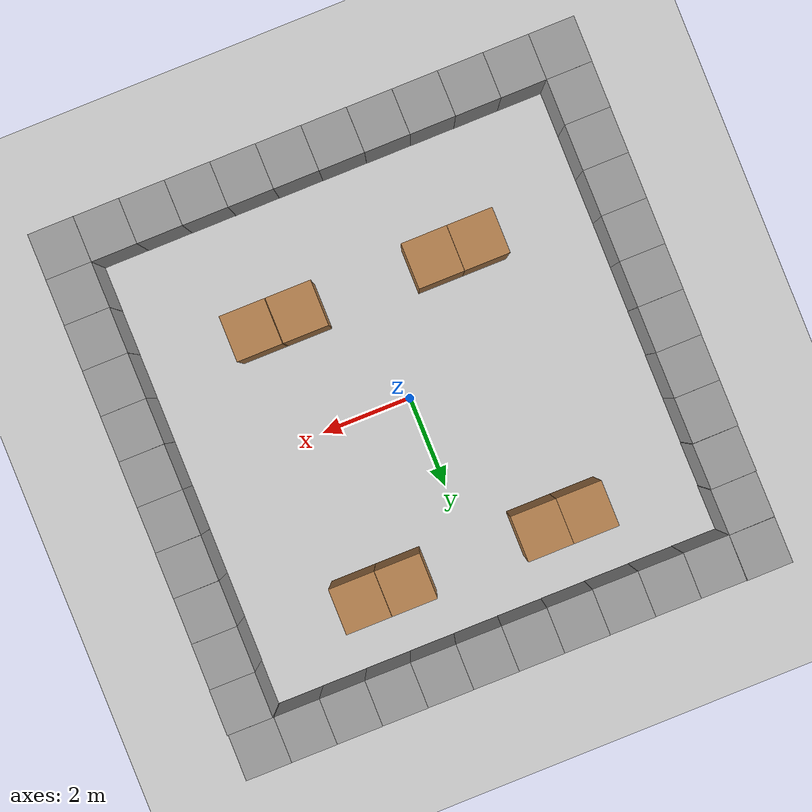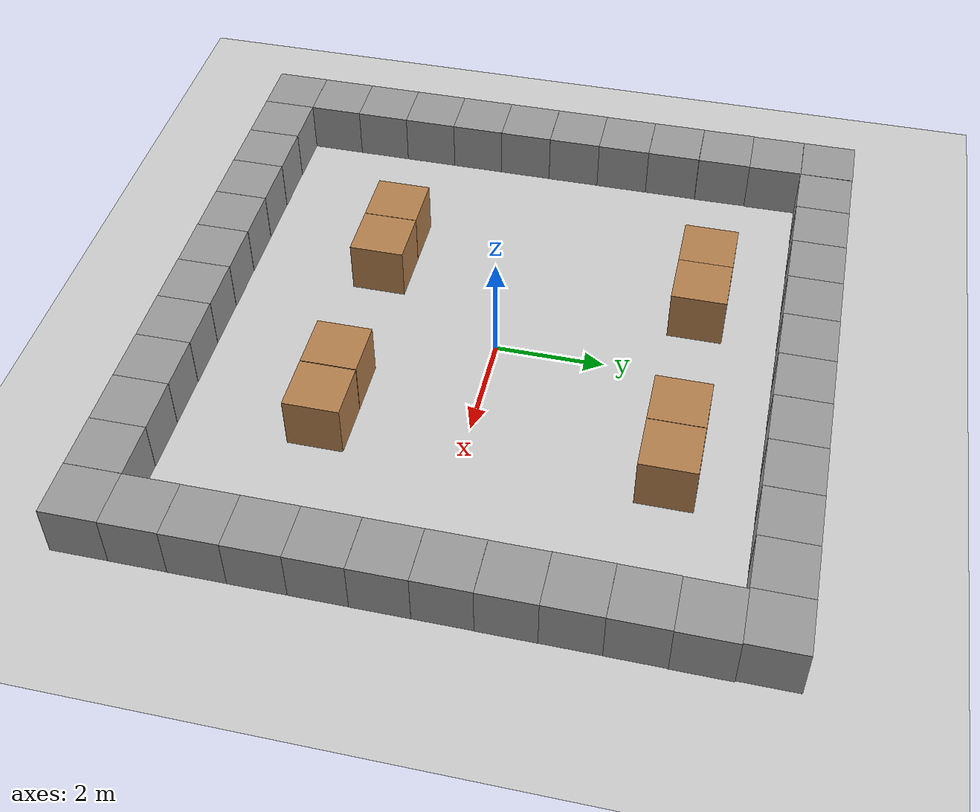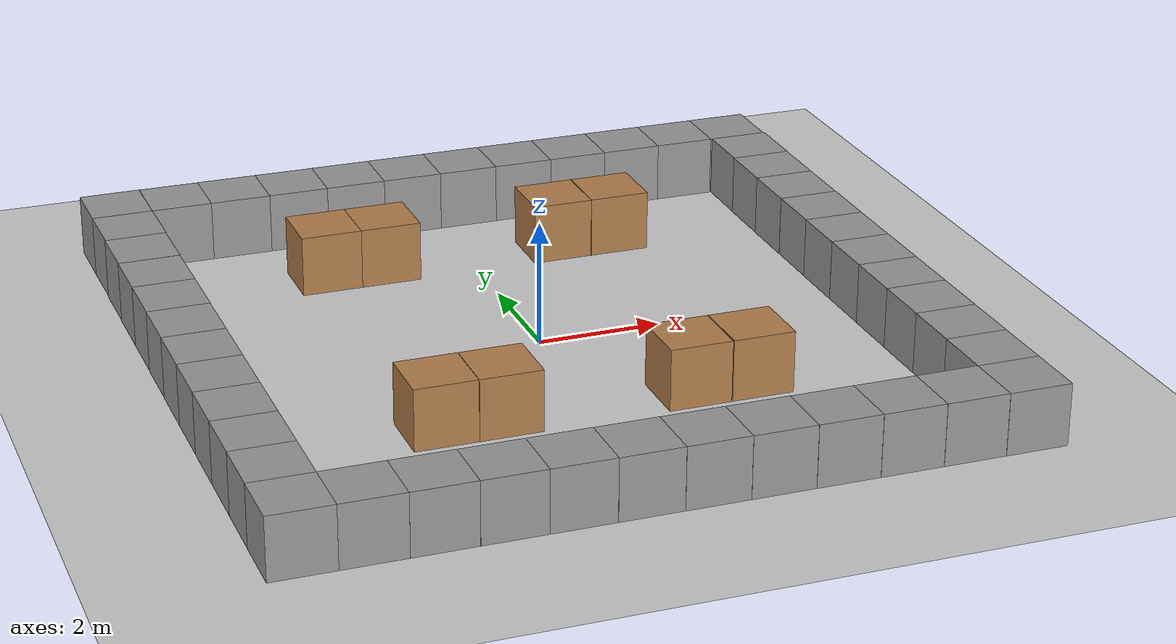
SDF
<sdf version="1.6">
 <world name="default">
  <light name="sun" type="directional">
   <pose>0 0 10 0 -0 0</pose>
   <diffuse>0.8 0.8 0.8 1</diffuse>
   <specular>0.1 0.1 0.1 1</specular>
   <attenuation>
    <range>1000</range>
    <constant>0.9</constant>
    <linear>0.01</linear>
    <quadratic>0.001</quadratic>
   </attenuation>
   <direction>-0.5 0.5 -1</direction>
  </light>
  <model name="ground_plane">
   <static>1</static>
   <link name="link">
    <collision name="collision">
     <geometry><plane><normal>0 0 1</normal><size>100 100</size></plane></geometry>
     <surface><friction><ode><mu>100</mu><mu2>50</mu2></ode></friction></surface>
    </collision>
    <visual name="visual">
     <cast_shadows>0</cast_shadows>
     <geometry><plane><normal>0 0 1</normal><size>100 100</size></plane></geometry>
     <material>
      <script><uri>file://media/materials/scripts/gazebo.material</uri><name>Gazebo/Grey</name></script>
     </material>
    </visual>
   </link>
  </model>
  <gravity>0 0 -9.8</gravity>
  <magnetic_field>6e-06 2.3e-05 -4.2e-05</magnetic_field>
  <atmosphere type="adiabatic"/>
  <physics name="default_physics" default="0" type="ode">
   <max_step_size>0.001</max_step_size>
   <real_time_factor>1</real_time_factor>
   <real_time_update_rate>1000</real_time_update_rate>
  </physics>
  <scene><ambient>0.4 0.4 0.4 1</ambient><background>0.7 0.7 0.7 1</background><shadows>1</shadows></scene>
  <spherical_coordinates>
   <surface_model>EARTH_WGS84</surface_model>
   <latitude_deg>0</latitude_deg>
   <longitude_deg>0</longitude_deg>
   <elevation>0</elevation>
   <heading_deg>0</heading_deg>
  </spherical_coordinates>
  <model name="unit_box_8">
   <pose>-2.50434 -2.50006 0.5 0 -0 0.000101</pose>
   <link name="link">
    <inertial>
     <mass>1</mass>
     <inertia>
      <ixx>0.166667</ixx>
      <ixy>0</ixy>
      <ixz>0</ixz>
      <iyy>0.166667</iyy>
      <iyz>0</iyz>
      <izz>0.166667</izz>
     </inertia>
    </inertial>
    <collision name="collision"><geometry><box><size>1 1 1</size></box></geometry></collision>
    <visual name="visual">
     <geometry><box><size>1 1 1</size></box></geometry>
     <material>
      <script><name>Gazebo/Wood</name><uri>file://media/materials/scripts/gazebo.material</uri></script>
     </material>
    </visual>
   </link>
  </model>
  <model name="unit_box_9">
   <pose>-1.50001 -2.5 0.5 0 -0 0.000107</pose>
   <link name="link">
    <inertial>
     <mass>1</mass>
     <inertia>
      <ixx>0.166667</ixx>
      <ixy>0</ixy>
      <ixz>0</ixz>
      <iyy>0.166667</iyy>
      <iyz>0</iyz>
      <izz>0.166667</izz>
     </inertia>
    </inertial>
    <collision name="collision"><geometry><box><size>1 1 1</size></box></geometry></collision>
    <visual name="visual">
     <geometry><box><size>1 1 1</size></box></geometry>
     <material>
      <script><name>Gazebo/Wood</name><uri>file://media/materials/scripts/gazebo.material</uri></script>
     </material>
    </visual>
   </link>
  </model>
  <model name="unit_box_10">
   <pose>1.48696 -2.50033 0.5 0 -0 0.000579</pose>
   <link name="link">
    <inertial>
     <mass>1</mass>
     <inertia>
      <ixx>0.166667</ixx>
      <ixy>0</ixy>
      <ixz>0</ixz>
      <iyy>0.166667</iyy>
      <iyz>0</iyz>
      <izz>0.166667</izz>
     </inertia>
    </inertial>
    <collision name="collision"><geometry><box><size>1 1 1</size></box></geometry></collision>
    <visual name="visual">
     <geometry><box><size>1 1 1</size></box></geometry>
     <material>
      <script><name>Gazebo/Wood</name><uri>file://media/materials/scripts/gazebo.material</uri></script>
     </material>
    </visual>
   </link>
  </model>
  <model name="unit_box_11">
   <pose>2.5 -2.5 0.499995 0 1e-05 0.000577</pose>
   <link name="link">
    <inertial>
     <mass>1</mass>
     <inertia>
      <ixx>0.166667</ixx>
      <ixy>0</ixy>
      <ixz>0</ixz>
      <iyy>0.166667</iyy>
      <iyz>0</iyz>
      <izz>0.166667</izz>
     </inertia>
    </inertial>
    <collision name="collision"><geometry><box><size>1 1 1</size></box></geometry></collision>
    <visual name="visual">
     <geometry><box><size>1 1 1</size></box></geometry>
     <material>
      <script><name>Gazebo/Wood</name><uri>file://media/materials/scripts/gazebo.material</uri></script>
     </material>
    </visual>
   </link>
  </model>
  <model name="unit_box_12">
   <pose>-2.50002 3.5 0.499995 0 -1e-05 1e-06</pose>
   <link name="link">
    <inertial>
     <mass>1</mass>
     <inertia>
      <ixx>0.166667</ixx>
      <ixy>0</ixy>
      <ixz>0</ixz>
      <iyy>0.166667</iyy>
      <iyz>0</iyz>
      <izz>0.166667</izz>
     </inertia>
    </inertial>
    <collision name="collision"><geometry><box><size>1 1 1</size></box></geometry></collision>
    <visual name="visual">
     <geometry><box><size>1 1 1</size></box></geometry>
     <material>
      <script><name>Gazebo/Wood</name><uri>file://media/materials/scripts/gazebo.material</uri></script>
     </material>
    </visual>
   </link>
  </model>
  <model name="unit_box_13">
   <pose>-1.50001 3.5 0.499995 0 1e-05 1.1e-05</pose>
   <link name="link">
    <inertial>
     <mass>1</mass>
     <inertia>
      <ixx>0.166667</ixx>
      <ixy>0</ixy>
      <ixz>0</ixz>
      <iyy>0.166667</iyy>
      <iyz>0</iyz>
      <izz>0.166667</izz>
     </inertia>
    </inertial>
    <collision name="collision"><geometry><box><size>1 1 1</size></box></geometry></collision>
    <visual name="visual">
     <geometry><box><size>1 1 1</size></box></geometry>
     <material>
      <script><name>Gazebo/Wood</name><uri>file://media/materials/scripts/gazebo.material</uri></script>
     </material>
    </visual>
   </link>
  </model>
  <model name="unit_box_14">
   <pose>1.49418 3.50019 0.499995 0 1e-05 -0.000432</pose>
   <link name="link">
    <inertial>
     <mass>1</mass>
     <inertia>
      <ixx>0.166667</ixx>
      <ixy>0</ixy>
      <ixz>0</ixz>
      <iyy>0.166667</iyy>
      <iyz>0</iyz>
      <izz>0.166667</izz>
     </inertia>
    </inertial>
    <collision name="collision"><geometry><box><size>1 1 1</size></box></geometry></collision>
    <visual name="visual">
     <geometry><box><size>1 1 1</size></box></geometry>
     <material>
      <script><name>Gazebo/Wood</name><uri>file://media/materials/scripts/gazebo.material</uri></script>
     </material>
    </visual>
   </link>
  </model>
  <model name="unit_box_15">
   <pose>2.50001 3.50002 0.5 0 0 -0.000431</pose>
   <link name="link">
    <inertial>
     <mass>1</mass>
     <inertia>
      <ixx>0.166667</ixx>
      <ixy>0</ixy>
      <ixz>0</ixz>
      <iyy>0.166667</iyy>
      <iyz>0</iyz>
      <izz>0.166667</izz>
     </inertia>
    </inertial>
    <collision name="collision"><geometry><box><size>1 1 1</size></box></geometry></collision>
    <visual name="visual">
     <geometry><box><size>1 1 1</size></box></geometry>
     <material>
      <script><name>Gazebo/Wood</name><uri>file://media/materials/scripts/gazebo.material</uri></script>
     </material>
    </visual>
   </link>
  </model>
  <model name="unit_box_0">
   <pose>-5.50064 -5.50156 0.5 0 -0 0.002332</pose>
   <link name="link">
    <inertial>
     <mass>1</mass>
     <inertia>
      <ixx>0.166667</ixx>
      <ixy>0</ixy>
      <ixz>0</ixz>
      <iyy>0.166667</iyy>
      <iyz>0</iyz>
      <izz>0.166667</izz>
     </inertia>
    </inertial>
    <collision name="collision"><geometry><box><size>1 1 1</size></box></geometry></collision>
    <visual name="visual">
     <geometry><box><size>1 1 1</size></box></geometry>
     <material>
      <script><name>Gazebo/Grey</name><uri>file://media/materials/scripts/gazebo.material</uri></script>
     </material>
    </visual>
   </link>
  </model>
  <model name="unit_box_1">
   <pose>-5.49961 -4.50127 0.499995 0 1e-05 0.00177</pose>
   <link name="link">
    <inertial>
     <mass>1</mass>
     <inertia>
      <ixx>0.166667</ixx>
      <ixy>0</ixy>
      <ixz>0</ixz>
      <iyy>0.166667</iyy>
      <iyz>0</iyz>
      <izz>0.166667</izz>
     </inertia>
    </inertial>
    <collision name="collision"><geometry><box><size>1 1 1</size></box></geometry></collision>
    <visual name="visual">
     <geometry><box><size>1 1 1</size></box></geometry>
     <material>
      <script><name>Gazebo/Grey</name><uri>file://media/materials/scripts/gazebo.material</uri></script>
     </material>
    </visual>
   </link>
  </model>
  <model name="unit_box_2">
   <pose>-5.4995 -3.50125 0.499995 -0 1e-05 0.001744</pose>
   <link name="link">
    <inertial>
     <mass>1</mass>
     <inertia>
      <ixx>0.166667</ixx>
      <ixy>0</ixy>
      <ixz>0</ixz>
      <iyy>0.166667</iyy>
      <iyz>0</iyz>
      <izz>0.166667</izz>
     </inertia>
    </inertial>
    <collision name="collision"><geometry><box><size>1 1 1</size></box></geometry></collision>
    <visual name="visual">
     <geometry><box><size>1 1 1</size></box></geometry>
     <material>
      <script><name>Gazebo/Grey</name><uri>file://media/materials/scripts/gazebo.material</uri></script>
     </material>
    </visual>
   </link>
  </model>
  <model name="unit_box_3">
   <pose>-5.50023 -2.50123 0.5 0 -0 0.00171</pose>
   <link name="link">
    <inertial>
     <mass>1</mass>
     <inertia>
      <ixx>0.166667</ixx>
      <ixy>0</ixy>
      <ixz>0</ixz>
      <iyy>0.166667</iyy>
      <iyz>0</iyz>
      <izz>0.166667</izz>
     </inertia>
    </inertial>
    <collision name="collision"><geometry><box><size>1 1 1</size></box></geometry></collision>
    <visual name="visual">
     <geometry><box><size>1 1 1</size></box></geometry>
     <material>
      <script><name>Gazebo/Grey</name><uri>file://media/materials/scripts/gazebo.material</uri></script>
     </material>
    </visual>
   </link>
  </model>
  <model name="unit_box_4">
   <pose>-5.50092 -1.50123 0.499995 0 -1e-05 0.001712</pose>
   <link name="link">
    <inertial>
     <mass>1</mass>
     <inertia>
      <ixx>0.166667</ixx>
      <ixy>0</ixy>
      <ixz>0</ixz>
      <iyy>0.166667</iyy>
      <iyz>0</iyz>
      <izz>0.166667</izz>
     </inertia>
    </inertial>
    <collision name="collision"><geometry><box><size>1 1 1</size></box></geometry></collision>
    <visual name="visual">
     <geometry><box><size>1 1 1</size></box></geometry>
     <material>
      <script><name>Gazebo/Grey</name><uri>file://media/materials/scripts/gazebo.material</uri></script>
     </material>
    </visual>
   </link>
  </model>
  <model name="unit_box_5">
   <pose>-5.50113 -0.500947 0.499995 -1e-05 0 0.002174</pose>
   <link name="link">
    <inertial>
     <mass>1</mass>
     <inertia>
      <ixx>0.166667</ixx>
      <ixy>0</ixy>
      <ixz>0</ixz>
      <iyy>0.166667</iyy>
      <iyz>0</iyz>
      <izz>0.166667</izz>
     </inertia>
    </inertial>
    <collision name="collision"><geometry><box><size>1 1 1</size></box></geometry></collision>
    <visual name="visual">
     <geometry><box><size>1 1 1</size></box></geometry>
     <material>
      <script><name>Gazebo/Grey</name><uri>file://media/materials/scripts/gazebo.material</uri></script>
     </material>
    </visual>
   </link>
  </model>
  <model name="unit_box_6">
   <pose>-5.50074 0.499987 0.5 0 -0 0.004041</pose>
   <link name="link">
    <inertial>
     <mass>1</mass>
     <inertia>
      <ixx>0.166667</ixx>
      <ixy>0</ixy>
      <ixz>0</ixz>
      <iyy>0.166667</iyy>
      <iyz>0</iyz>
      <izz>0.166667</izz>
     </inertia>
    </inertial>
    <collision name="collision"><geometry><box><size>1 1 1</size></box></geometry></collision>
    <visual name="visual">
     <geometry><box><size>1 1 1</size></box></geometry>
     <material>
      <script><name>Gazebo/Grey</name><uri>file://media/materials/scripts/gazebo.material</uri></script>
     </material>
    </visual>
   </link>
  </model>
  <model name="unit_box_7">
   <pose>-5.49917 1.50009 0.5 0 -0 0.004223</pose>
   <link name="link">
    <inertial>
     <mass>1</mass>
     <inertia>
      <ixx>0.166667</ixx>
      <ixy>0</ixy>
      <ixz>0</ixz>
      <iyy>0.166667</iyy>
      <iyz>0</iyz>
      <izz>0.166667</izz>
     </inertia>
    </inertial>
    <collision name="collision"><geometry><box><size>1 1 1</size></box></geometry></collision>
    <visual name="visual">
     <geometry><box><size>1 1 1</size></box></geometry>
     <material>
      <script><name>Gazebo/Grey</name><uri>file://media/materials/scripts/gazebo.material</uri></script>
     </material>
    </visual>
   </link>
  </model>
  <model name="unit_box_16">
   <pose>-5.50298 2.50069 0.499995 0 1e-05 0.005335</pose>
   <link name="link">
    <inertial>
     <mass>1</mass>
     <inertia>
      <ixx>0.166667</ixx>
      <ixy>0</ixy>
      <ixz>0</ixz>
      <iyy>0.166667</iyy>
      <iyz>0</iyz>
      <izz>0.166667</izz>
     </inertia>
    </inertial>
    <collision name="collision"><geometry><box><size>1 1 1</size></box></geometry></collision>
    <visual name="visual">
     <geometry><box><size>1 1 1</size></box></geometry>
     <material>
      <script><name>Gazebo/Grey</name><uri>file://media/materials/scripts/gazebo.material</uri></script>
     </material>
    </visual>
   </link>
  </model>
  <model name="unit_box_17">
   <pose>-5.50223 3.50386 0.499995 0 1e-05 0.010808</pose>
   <link name="link">
    <inertial>
     <mass>1</mass>
     <inertia>
      <ixx>0.166667</ixx>
      <ixy>0</ixy>
      <ixz>0</ixz>
      <iyy>0.166667</iyy>
      <iyz>0</iyz>
      <izz>0.166667</izz>
     </inertia>
    </inertial>
    <collision name="collision"><geometry><box><size>1 1 1</size></box></geometry></collision>
    <visual name="visual">
     <geometry><box><size>1 1 1</size></box></geometry>
     <material>
      <script><name>Gazebo/Grey</name><uri>file://media/materials/scripts/gazebo.material</uri></script>
     </material>
    </visual>
   </link>
  </model>
  <model name="unit_box_18">
   <pose>-5.49974 4.5043 0.5 0 -0 0.010094</pose>
   <link name="link">
    <inertial>
     <mass>1</mass>
     <inertia>
      <ixx>0.166667</ixx>
      <ixy>0</ixy>
      <ixz>0</ixz>
      <iyy>0.166667</iyy>
      <iyz>0</iyz>
      <izz>0.166667</izz>
     </inertia>
    </inertial>
    <collision name="collision"><geometry><box><size>1 1 1</size></box></geometry></collision>
    <visual name="visual">
     <geometry><box><size>1 1 1</size></box></geometry>
     <material>
      <script><name>Gazebo/Grey</name><uri>file://media/materials/scripts/gazebo.material</uri></script>
     </material>
    </visual>
   </link>
  </model>
  <model name="unit_box_19">
   <pose>-5.50461 5.50704 0.5 0 -0 0.004576</pose>
   <link name="link">
    <inertial>
     <mass>1</mass>
     <inertia>
      <ixx>0.166667</ixx>
      <ixy>0</ixy>
      <ixz>0</ixz>
      <iyy>0.166667</iyy>
      <iyz>0</iyz>
      <izz>0.166667</izz>
     </inertia>
    </inertial>
    <collision name="collision"><geometry><box><size>1 1 1</size></box></geometry></collision>
    <visual name="visual">
     <geometry><box><size>1 1 1</size></box></geometry>
     <material>
      <script><name>Gazebo/Grey</name><uri>file://media/materials/scripts/gazebo.material</uri></script>
     </material>
    </visual>
   </link>
  </model>
  <model name="unit_box_20">
   <pose>-4.50059 -5.4992 0.5 0 -0 0.002403</pose>
   <link name="link">
    <inertial>
     <mass>1</mass>
     <inertia>
      <ixx>0.166667</ixx>
      <ixy>0</ixy>
      <ixz>0</ixz>
      <iyy>0.166667</iyy>
      <iyz>0</iyz>
      <izz>0.166667</izz>
     </inertia>
    </inertial>
    <collision name="collision"><geometry><box><size>1 1 1</size></box></geometry></collision>
    <visual name="visual">
     <geometry><box><size>1 1 1</size></box></geometry>
     <material>
      <script><name>Gazebo/Grey</name><uri>file://media/materials/scripts/gazebo.material</uri></script>
     </material>
    </visual>
   </link>
  </model>
  <model name="unit_box_21">
   <pose>-3.50058 -5.49857 0.5 0 -0 0.002429</pose>
   <link name="link">
    <inertial>
     <mass>1</mass>
     <inertia>
      <ixx>0.166667</ixx>
      <ixy>0</ixy>
      <ixz>0</ixz>
      <iyy>0.166667</iyy>
      <iyz>0</iyz>
      <izz>0.166667</izz>
     </inertia>
    </inertial>
    <collision name="collision"><geometry><box><size>1 1 1</size></box></geometry></collision>
    <visual name="visual">
     <geometry><box><size>1 1 1</size></box></geometry>
     <material>
      <script><name>Gazebo/Grey</name><uri>file://media/materials/scripts/gazebo.material</uri></script>
     </material>
    </visual>
   </link>
  </model>
  <model name="unit_box_22">
   <pose>-2.50047 -5.49867 0.5 0 -0 0.002632</pose>
   <link name="link">
    <inertial>
     <mass>1</mass>
     <inertia>
      <ixx>0.166667</ixx>
      <ixy>0</ixy>
      <ixz>0</ixz>
      <iyy>0.166667</iyy>
      <iyz>0</iyz>
      <izz>0.166667</izz>
     </inertia>
    </inertial>
    <collision name="collision"><geometry><box><size>1 1 1</size></box></geometry></collision>
    <visual name="visual">
     <geometry><box><size>1 1 1</size></box></geometry>
     <material>
      <script><name>Gazebo/Grey</name><uri>file://media/materials/scripts/gazebo.material</uri></script>
     </material>
    </visual>
   </link>
  </model>
  <model name="unit_box_23">
   <pose>-1.50007 -5.49849 0.5 0 -0 0.003423</pose>
   <link name="link">
    <inertial>
     <mass>1</mass>
     <inertia>
      <ixx>0.166667</ixx>
      <ixy>0</ixy>
      <ixz>0</ixz>
      <iyy>0.166667</iyy>
      <iyz>0</iyz>
      <izz>0.166667</izz>
     </inertia>
    </inertial>
    <collision name="collision"><geometry><box><size>1 1 1</size></box></geometry></collision>
    <visual name="visual">
     <geometry><box><size>1 1 1</size></box></geometry>
     <material>
      <script><name>Gazebo/Grey</name><uri>file://media/materials/scripts/gazebo.material</uri></script>
     </material>
    </visual>
   </link>
  </model>
  <model name="unit_box_24">
   <pose>-0.499911 -5.49902 0.5 0 -0 0.003708</pose>
   <link name="link">
    <inertial>
     <mass>1</mass>
     <inertia>
      <ixx>0.166667</ixx>
      <ixy>0</ixy>
      <ixz>0</ixz>
      <iyy>0.166667</iyy>
      <iyz>0</iyz>
      <izz>0.166667</izz>
     </inertia>
    </inertial>
    <collision name="collision"><geometry><box><size>1 1 1</size></box></geometry></collision>
    <visual name="visual">
     <geometry><box><size>1 1 1</size></box></geometry>
     <material>
      <script><name>Gazebo/Grey</name><uri>file://media/materials/scripts/gazebo.material</uri></script>
     </material>
    </visual>
   </link>
  </model>
  <model name="unit_box_25">
   <pose>0.500108 -5.49953 0.499995 1e-05 -0 0.003726</pose>
   <link name="link">
    <inertial>
     <mass>1</mass>
     <inertia>
      <ixx>0.166667</ixx>
      <ixy>0</ixy>
      <ixz>0</ixz>
      <iyy>0.166667</iyy>
      <iyz>0</iyz>
      <izz>0.166667</izz>
     </inertia>
    </inertial>
    <collision name="collision"><geometry><box><size>1 1 1</size></box></geometry></collision>
    <visual name="visual">
     <geometry><box><size>1 1 1</size></box></geometry>
     <material>
      <script><name>Gazebo/Grey</name><uri>file://media/materials/scripts/gazebo.material</uri></script>
     </material>
    </visual>
   </link>
  </model>
  <model name="unit_box_26">
   <pose>1.50012 -5.49964 0.499995 1e-05 -0 0.003722</pose>
   <link name="link">
    <inertial>
     <mass>1</mass>
     <inertia>
      <ixx>0.166667</ixx>
      <ixy>0</ixy>
      <ixz>0</ixz>
      <iyy>0.166667</iyy>
      <iyz>0</iyz>
      <izz>0.166667</izz>
     </inertia>
    </inertial>
    <collision name="collision"><geometry><box><size>1 1 1</size></box></geometry></collision>
    <visual name="visual">
     <geometry><box><size>1 1 1</size></box></geometry>
     <material>
      <script><name>Gazebo/Grey</name><uri>file://media/materials/scripts/gazebo.material</uri></script>
     </material>
    </visual>
   </link>
  </model>
  <model name="unit_box_27">
   <pose>2.50014 -5.50016 0.499995 -1e-05 -0 0.003707</pose>
   <link name="link">
    <inertial>
     <mass>1</mass>
     <inertia>
      <ixx>0.166667</ixx>
      <ixy>0</ixy>
      <ixz>0</ixz>
      <iyy>0.166667</iyy>
      <iyz>0</iyz>
      <izz>0.166667</izz>
     </inertia>
    </inertial>
    <collision name="collision"><geometry><box><size>1 1 1</size></box></geometry></collision>
    <visual name="visual">
     <geometry><box><size>1 1 1</size></box></geometry>
     <material>
      <script><name>Gazebo/Grey</name><uri>file://media/materials/scripts/gazebo.material</uri></script>
     </material>
    </visual>
   </link>
  </model>
  <model name="unit_box_28">
   <pose>3.50035 -5.50042 0.499995 -1e-05 -0 0.003308</pose>
   <link name="link">
    <inertial>
     <mass>1</mass>
     <inertia>
      <ixx>0.166667</ixx>
      <ixy>0</ixy>
      <ixz>0</ixz>
      <iyy>0.166667</iyy>
      <iyz>0</iyz>
      <izz>0.166667</izz>
     </inertia>
    </inertial>
    <collision name="collision"><geometry><box><size>1 1 1</size></box></geometry></collision>
    <visual name="visual">
     <geometry><box><size>1 1 1</size></box></geometry>
     <material>
      <script><name>Gazebo/Grey</name><uri>file://media/materials/scripts/gazebo.material</uri></script>
     </material>
    </visual>
   </link>
  </model>
  <model name="unit_box_29">
   <pose>4.50043 -5.50036 0.499995 -0 -1e-05 0.003156</pose>
   <link name="link">
    <inertial>
     <mass>1</mass>
     <inertia>
      <ixx>0.166667</ixx>
      <ixy>0</ixy>
      <ixz>0</ixz>
      <iyy>0.166667</iyy>
      <iyz>0</iyz>
      <izz>0.166667</izz>
     </inertia>
    </inertial>
    <collision name="collision"><geometry><box><size>1 1 1</size></box></geometry></collision>
    <visual name="visual">
     <geometry><box><size>1 1 1</size></box></geometry>
     <material>
      <script><name>Gazebo/Grey</name><uri>file://media/materials/scripts/gazebo.material</uri></script>
     </material>
    </visual>
   </link>
  </model>
  <model name="unit_box_30">
   <pose>5.50061 -5.50186 0.5 0 -0 0.002817</pose>
   <link name="link">
    <inertial>
     <mass>1</mass>
     <inertia>
      <ixx>0.166667</ixx>
      <ixy>0</ixy>
      <ixz>0</ixz>
      <iyy>0.166667</iyy>
      <iyz>0</iyz>
      <izz>0.166667</izz>
     </inertia>
    </inertial>
    <collision name="collision"><geometry><box><size>1 1 1</size></box></geometry></collision>
    <visual name="visual">
     <geometry><box><size>1 1 1</size></box></geometry>
     <material>
      <script><name>Gazebo/Grey</name><uri>file://media/materials/scripts/gazebo.material</uri></script>
     </material>
    </visual>
   </link>
  </model>
  <model name="unit_box_31">
   <pose>5.50002 -4.50184 0.5 0 -0 0.002799</pose>
   <link name="link">
    <inertial>
     <mass>1</mass>
     <inertia>
      <ixx>0.166667</ixx>
      <ixy>0</ixy>
      <ixz>0</ixz>
      <iyy>0.166667</iyy>
      <iyz>0</iyz>
      <izz>0.166667</izz>
     </inertia>
    </inertial>
    <collision name="collision"><geometry><box><size>1 1 1</size></box></geometry></collision>
    <visual name="visual">
     <geometry><box><size>1 1 1</size></box></geometry>
     <material>
      <script><name>Gazebo/Grey</name><uri>file://media/materials/scripts/gazebo.material</uri></script>
     </material>
    </visual>
   </link>
  </model>
  <model name="unit_box_32">
   <pose>5.50049 -3.50176 0.5 0 -0 0.002652</pose>
   <link name="link">
    <inertial>
     <mass>1</mass>
     <inertia>
      <ixx>0.166667</ixx>
      <ixy>0</ixy>
      <ixz>0</ixz>
      <iyy>0.166667</iyy>
      <iyz>0</iyz>
      <izz>0.166667</izz>
     </inertia>
    </inertial>
    <collision name="collision"><geometry><box><size>1 1 1</size></box></geometry></collision>
    <visual name="visual">
     <geometry><box><size>1 1 1</size></box></geometry>
     <material>
      <script><name>Gazebo/Grey</name><uri>file://media/materials/scripts/gazebo.material</uri></script>
     </material>
    </visual>
   </link>
  </model>
  <model name="unit_box_33">
   <pose>5.50059 -2.50175 0.5 0 -0 0.002647</pose>
   <link name="link">
    <inertial>
     <mass>1</mass>
     <inertia>
      <ixx>0.166667</ixx>
      <ixy>0</ixy>
      <ixz>0</ixz>
      <iyy>0.166667</iyy>
      <iyz>0</iyz>
      <izz>0.166667</izz>
     </inertia>
    </inertial>
    <collision name="collision"><geometry><box><size>1 1 1</size></box></geometry></collision>
    <visual name="visual">
     <geometry><box><size>1 1 1</size></box></geometry>
     <material>
      <script><name>Gazebo/Grey</name><uri>file://media/materials/scripts/gazebo.material</uri></script>
     </material>
    </visual>
   </link>
  </model>
  <model name="unit_box_34">
   <pose>5.50021 -1.50154 0.5 0 -0 0.002241</pose>
   <link name="link">
    <inertial>
     <mass>1</mass>
     <inertia>
      <ixx>0.166667</ixx>
      <ixy>0</ixy>
      <ixz>0</ixz>
      <iyy>0.166667</iyy>
      <iyz>0</iyz>
      <izz>0.166667</izz>
     </inertia>
    </inertial>
    <collision name="collision"><geometry><box><size>1 1 1</size></box></geometry></collision>
    <visual name="visual">
     <geometry><box><size>1 1 1</size></box></geometry>
     <material>
      <script><name>Gazebo/Grey</name><uri>file://media/materials/scripts/gazebo.material</uri></script>
     </material>
    </visual>
   </link>
  </model>
  <model name="unit_box_35">
   <pose>5.50088 -0.501082 0.5 0 -0 0.001328</pose>
   <link name="link">
    <inertial>
     <mass>1</mass>
     <inertia>
      <ixx>0.166667</ixx>
      <ixy>0</ixy>
      <ixz>0</ixz>
      <iyy>0.166667</iyy>
      <iyz>0</iyz>
      <izz>0.166667</izz>
     </inertia>
    </inertial>
    <collision name="collision"><geometry><box><size>1 1 1</size></box></geometry></collision>
    <visual name="visual">
     <geometry><box><size>1 1 1</size></box></geometry>
     <material>
      <script><name>Gazebo/Grey</name><uri>file://media/materials/scripts/gazebo.material</uri></script>
     </material>
    </visual>
   </link>
  </model>
  <model name="unit_box_36">
   <pose>5.49833 0.499191 0.5 0 -0 0.000776</pose>
   <link name="link">
    <inertial>
     <mass>1</mass>
     <inertia>
      <ixx>0.166667</ixx>
      <ixy>0</ixy>
      <ixz>0</ixz>
      <iyy>0.166667</iyy>
      <iyz>0</iyz>
      <izz>0.166667</izz>
     </inertia>
    </inertial>
    <collision name="collision"><geometry><box><size>1 1 1</size></box></geometry></collision>
    <visual name="visual">
     <geometry><box><size>1 1 1</size></box></geometry>
     <material>
      <script><name>Gazebo/Grey</name><uri>file://media/materials/scripts/gazebo.material</uri></script>
     </material>
    </visual>
   </link>
  </model>
  <model name="unit_box_37">
   <pose>5.50228 1.50026 0.5 0 0 -0.00137</pose>
   <link name="link">
    <inertial>
     <mass>1</mass>
     <inertia>
      <ixx>0.166667</ixx>
      <ixy>0</ixy>
      <ixz>0</ixz>
      <iyy>0.166667</iyy>
      <iyz>0</iyz>
      <izz>0.166667</izz>
     </inertia>
    </inertial>
    <collision name="collision"><geometry><box><size>1 1 1</size></box></geometry></collision>
    <visual name="visual">
     <geometry><box><size>1 1 1</size></box></geometry>
     <material>
      <script><name>Gazebo/Grey</name><uri>file://media/materials/scripts/gazebo.material</uri></script>
     </material>
    </visual>
   </link>
  </model>
  <model name="unit_box_38">
   <pose>5.5015 2.50068 0.499995 0 -1e-05 -0.002194</pose>
   <link name="link">
    <inertial>
     <mass>1</mass>
     <inertia>
      <ixx>0.166667</ixx>
      <ixy>0</ixy>
      <ixz>0</ixz>
      <iyy>0.166667</iyy>
      <iyz>0</iyz>
      <izz>0.166667</izz>
     </inertia>
    </inertial>
    <collision name="collision"><geometry><box><size>1 1 1</size></box></geometry></collision>
    <visual name="visual">
     <geometry><box><size>1 1 1</size></box></geometry>
     <material>
      <script><name>Gazebo/Grey</name><uri>file://media/materials/scripts/gazebo.material</uri></script>
     </material>
    </visual>
   </link>
  </model>
  <model name="unit_box_39">
   <pose>5.50747 3.50103 0.499995 -0 1e-05 -0.002921</pose>
   <link name="link">
    <inertial>
     <mass>1</mass>
     <inertia>
      <ixx>0.166667</ixx>
      <ixy>0</ixy>
      <ixz>0</ixz>
      <iyy>0.166667</iyy>
      <iyz>0</iyz>
      <izz>0.166667</izz>
     </inertia>
    </inertial>
    <collision name="collision"><geometry><box><size>1 1 1</size></box></geometry></collision>
    <visual name="visual">
     <geometry><box><size>1 1 1</size></box></geometry>
     <material>
      <script><name>Gazebo/Grey</name><uri>file://media/materials/scripts/gazebo.material</uri></script>
     </material>
    </visual>
   </link>
  </model>
  <model name="unit_box_40">
   <pose>5.51814 4.50105 0.499995 0 -1e-05 -0.002999</pose>
   <link name="link">
    <inertial>
     <mass>1</mass>
     <inertia>
      <ixx>0.166667</ixx>
      <ixy>0</ixy>
      <ixz>0</ixz>
      <iyy>0.166667</iyy>
      <iyz>0</iyz>
      <izz>0.166667</izz>
     </inertia>
    </inertial>
    <collision name="collision"><geometry><box><size>1 1 1</size></box></geometry></collision>
    <visual name="visual">
     <geometry><box><size>1 1 1</size></box></geometry>
     <material>
      <script><name>Gazebo/Grey</name><uri>file://media/materials/scripts/gazebo.material</uri></script>
     </material>
    </visual>
   </link>
  </model>
  <model name="unit_box_41">
   <pose>5.50025 5.50127 0.499995 0 1e-05 -0.003324</pose>
   <link name="link">
    <inertial>
     <mass>1</mass>
     <inertia>
      <ixx>0.166667</ixx>
      <ixy>0</ixy>
      <ixz>0</ixz>
      <iyy>0.166667</iyy>
      <iyz>0</iyz>
      <izz>0.166667</izz>
     </inertia>
    </inertial>
    <collision name="collision"><geometry><box><size>1 1 1</size></box></geometry></collision>
    <visual name="visual">
     <geometry><box><size>1 1 1</size></box></geometry>
     <material>
      <script><name>Gazebo/Grey</name><uri>file://media/materials/scripts/gazebo.material</uri></script>
     </material>
    </visual>
   </link>
  </model>
  <model name="unit_box_42_0">
   <pose>-4.50028 5.49967 0.499995 -1e-05 -0 -0.004157</pose>
   <link name="link">
    <inertial>
     <mass>1</mass>
     <inertia>
      <ixx>0.166667</ixx>
      <ixy>0</ixy>
      <ixz>0</ixz>
      <iyy>0.166667</iyy>
      <iyz>0</iyz>
      <izz>0.166667</izz>
     </inertia>
    </inertial>
    <collision name="collision"><geometry><box><size>1 1 1</size></box></geometry></collision>
    <visual name="visual">
     <geometry><box><size>1 1 1</size></box></geometry>
     <material>
      <script><name>Gazebo/Grey</name><uri>file://media/materials/scripts/gazebo.material</uri></script>
     </material>
    </visual>
   </link>
  </model>
  <model name="unit_box_42_1">
   <pose>-3.50027 5.49982 0.5 0 0 -0.004159</pose>
   <link name="link">
    <inertial>
     <mass>1</mass>
     <inertia>
      <ixx>0.166667</ixx>
      <ixy>0</ixy>
      <ixz>0</ixz>
      <iyy>0.166667</iyy>
      <iyz>0</iyz>
      <izz>0.166667</izz>
     </inertia>
    </inertial>
    <collision name="collision"><geometry><box><size>1 1 1</size></box></geometry></collision>
    <visual name="visual">
     <geometry><box><size>1 1 1</size></box></geometry>
     <material>
      <script><name>Gazebo/Grey</name><uri>file://media/materials/scripts/gazebo.material</uri></script>
     </material>
    </visual>
   </link>
  </model>
  <model name="unit_box_42_2">
   <pose>-2.50026 5.50001 0.5 0 0 -0.004159</pose>
   <link name="link">
    <inertial>
     <mass>1</mass>
     <inertia>
      <ixx>0.166667</ixx>
      <ixy>0</ixy>
      <ixz>0</ixz>
      <iyy>0.166667</iyy>
      <iyz>0</iyz>
      <izz>0.166667</izz>
     </inertia>
    </inertial>
    <collision name="collision"><geometry><box><size>1 1 1</size></box></geometry></collision>
    <visual name="visual">
     <geometry><box><size>1 1 1</size></box></geometry>
     <material>
      <script><name>Gazebo/Grey</name><uri>file://media/materials/scripts/gazebo.material</uri></script>
     </material>
    </visual>
   </link>
  </model>
  <model name="unit_box_42_3">
   <pose>-1.50024 5.50036 0.5 0 0 -0.004161</pose>
   <link name="link">
    <inertial>
     <mass>1</mass>
     <inertia>
      <ixx>0.166667</ixx>
      <ixy>0</ixy>
      <ixz>0</ixz>
      <iyy>0.166667</iyy>
      <iyz>0</iyz>
      <izz>0.166667</izz>
     </inertia>
    </inertial>
    <collision name="collision"><geometry><box><size>1 1 1</size></box></geometry></collision>
    <visual name="visual">
     <geometry><box><size>1 1 1</size></box></geometry>
     <material>
      <script><name>Gazebo/Grey</name><uri>file://media/materials/scripts/gazebo.material</uri></script>
     </material>
    </visual>
   </link>
  </model>
  <model name="unit_box_42_4">
   <pose>-0.500038 5.50068 0.5 0 0 -0.003783</pose>
   <link name="link">
    <inertial>
     <mass>1</mass>
     <inertia>
      <ixx>0.166667</ixx>
      <ixy>0</ixy>
      <ixz>0</ixz>
      <iyy>0.166667</iyy>
      <iyz>0</iyz>
      <izz>0.166667</izz>
     </inertia>
    </inertial>
    <collision name="collision"><geometry><box><size>1 1 1</size></box></geometry></collision>
    <visual name="visual">
     <geometry><box><size>1 1 1</size></box></geometry>
     <material>
      <script><name>Gazebo/Grey</name><uri>file://media/materials/scripts/gazebo.material</uri></script>
     </material>
    </visual>
   </link>
  </model>
  <model name="unit_box_42_5">
   <pose>0.499982 5.50052 0.5 0 0 -0.003755</pose>
   <link name="link">
    <inertial>
     <mass>1</mass>
     <inertia>
      <ixx>0.166667</ixx>
      <ixy>0</ixy>
      <ixz>0</ixz>
      <iyy>0.166667</iyy>
      <iyz>0</iyz>
      <izz>0.166667</izz>
     </inertia>
    </inertial>
    <collision name="collision"><geometry><box><size>1 1 1</size></box></geometry></collision>
    <visual name="visual">
     <geometry><box><size>1 1 1</size></box></geometry>
     <material>
      <script><name>Gazebo/Grey</name><uri>file://media/materials/scripts/gazebo.material</uri></script>
     </material>
    </visual>
   </link>
  </model>
  <model name="unit_box_42_6">
   <pose>1.50003 5.50044 0.499995 1e-05 -0 -0.003692</pose>
   <link name="link">
    <inertial>
     <mass>1</mass>
     <inertia>
      <ixx>0.166667</ixx>
      <ixy>0</ixy>
      <ixz>0</ixz>
      <iyy>0.166667</iyy>
      <iyz>0</iyz>
      <izz>0.166667</izz>
     </inertia>
    </inertial>
    <collision name="collision"><geometry><box><size>1 1 1</size></box></geometry></collision>
    <visual name="visual">
     <geometry><box><size>1 1 1</size></box></geometry>
     <material>
      <script><name>Gazebo/Grey</name><uri>file://media/materials/scripts/gazebo.material</uri></script>
     </material>
    </visual>
   </link>
  </model>
  <model name="unit_box_42_7">
   <pose>2.50008 5.50044 0.5 0 0 -0.003602</pose>
   <link name="link">
    <inertial>
     <mass>1</mass>
     <inertia>
      <ixx>0.166667</ixx>
      <ixy>0</ixy>
      <ixz>0</ixz>
      <iyy>0.166667</iyy>
      <iyz>0</iyz>
      <izz>0.166667</izz>
     </inertia>
    </inertial>
    <collision name="collision"><geometry><box><size>1 1 1</size></box></geometry></collision>
    <visual name="visual">
     <geometry><box><size>1 1 1</size></box></geometry>
     <material>
      <script><name>Gazebo/Grey</name><uri>file://media/materials/scripts/gazebo.material</uri></script>
     </material>
    </visual>
   </link>
  </model>
  <model name="unit_box_42_8">
   <pose>3.50015 5.50035 0.5 0 0 -0.003478</pose>
   <link name="link">
    <inertial>
     <mass>1</mass>
     <inertia>
      <ixx>0.166667</ixx>
      <ixy>0</ixy>
      <ixz>0</ixz>
      <iyy>0.166667</iyy>
      <iyz>0</iyz>
      <izz>0.166667</izz>
     </inertia>
    </inertial>
    <collision name="collision"><geometry><box><size>1 1 1</size></box></geometry></collision>
    <visual name="visual">
     <geometry><box><size>1 1 1</size></box></geometry>
     <material>
      <script><name>Gazebo/Grey</name><uri>file://media/materials/scripts/gazebo.material</uri></script>
     </material>
    </visual>
   </link>
  </model>
  <model name="unit_box_42_9">
   <pose>4.50016 5.50061 0.499995 0 -1e-05 -0.003481</pose>
   <link name="link">
    <inertial>
     <mass>1</mass>
     <inertia>
      <ixx>0.166667</ixx>
      <ixy>0</ixy>
      <ixz>0</ixz>
      <iyy>0.166667</iyy>
      <iyz>0</iyz>
      <izz>0.166667</izz>
     </inertia>
    </inertial>
    <collision name="collision"><geometry><box><size>1 1 1</size></box></geometry></collision>
    <visual name="visual">
     <geometry><box><size>1 1 1</size></box></geometry>
     <material>
      <script><name>Gazebo/Grey</name><uri>file://media/materials/scripts/gazebo.material</uri></script>
     </material>
    </visual>
   </link>
  </model>
 </world>
</sdf>
